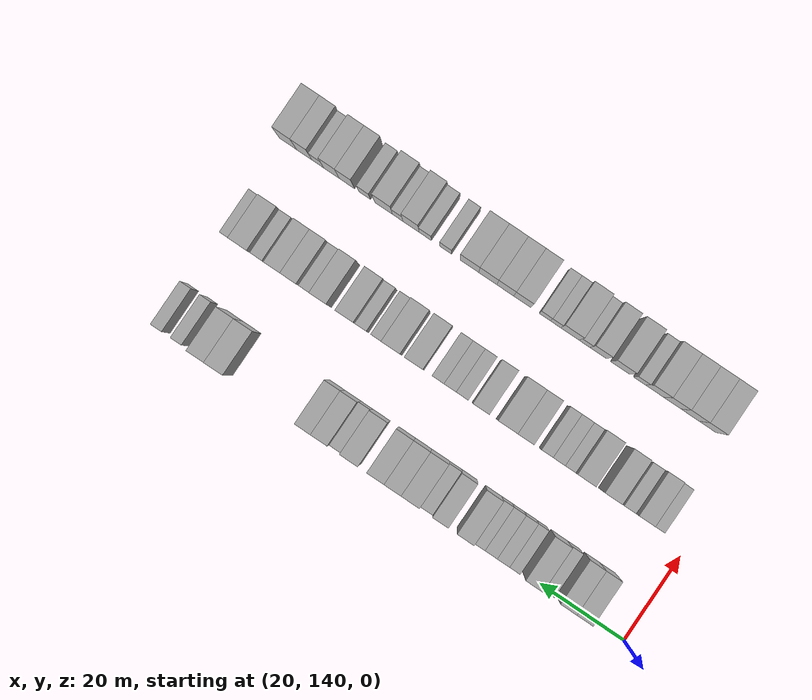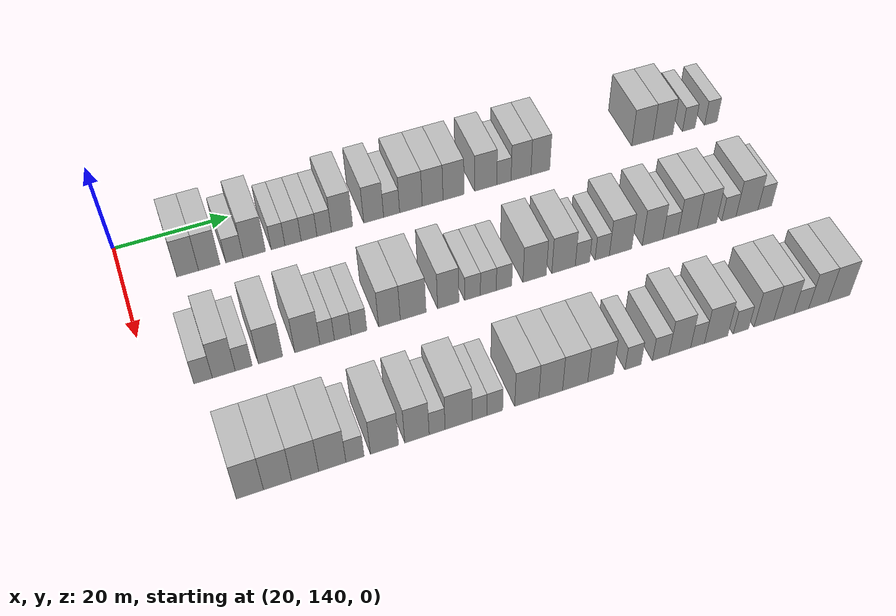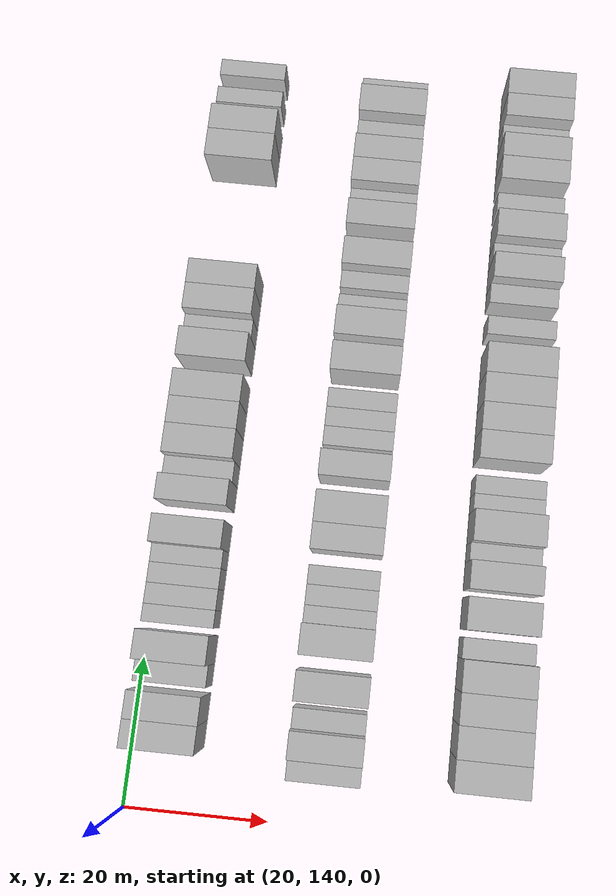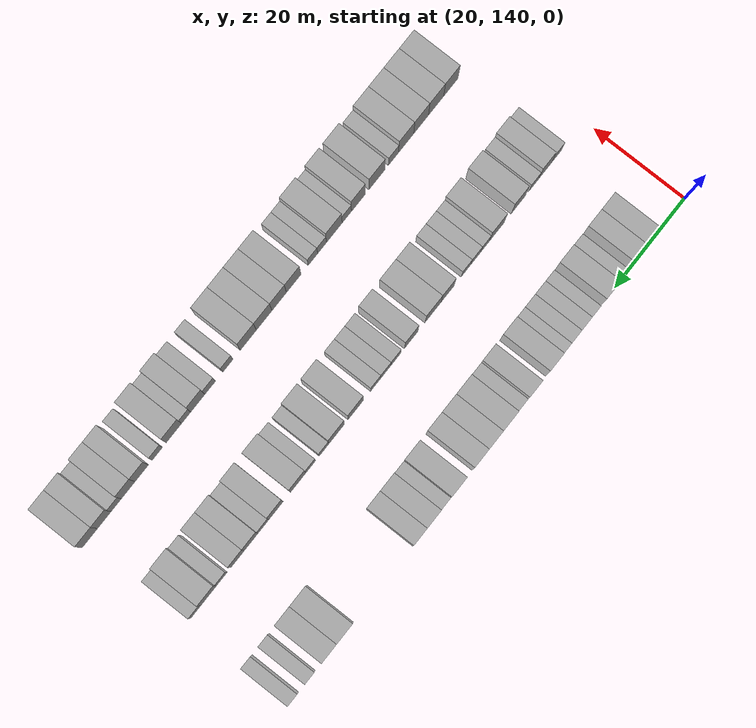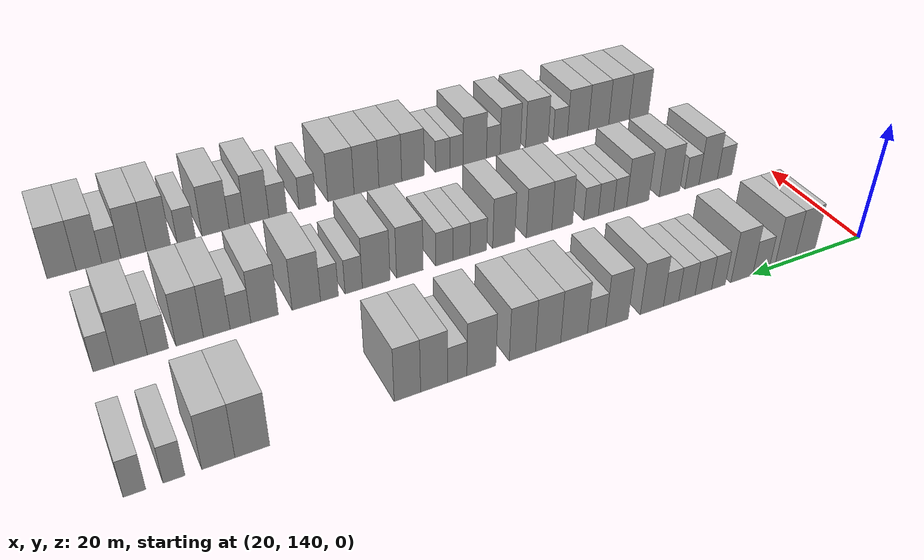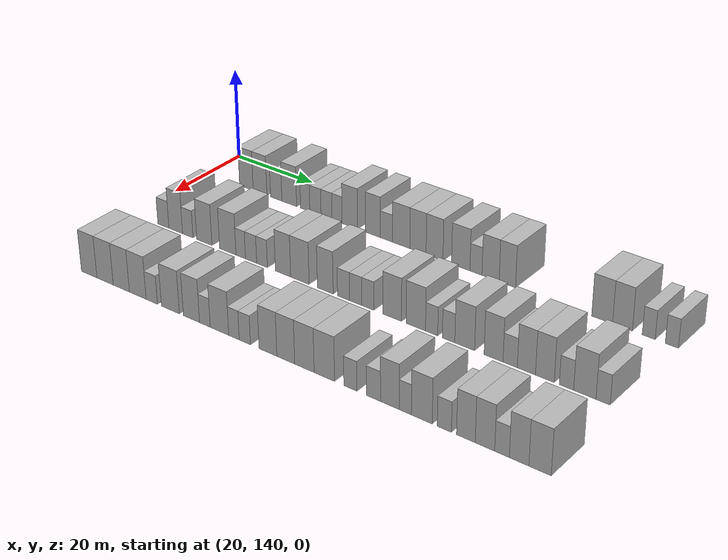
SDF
<sdf version="1.6">
 <world name="default">
  <model name="building_99">
   <static>1</static>
   <pose>25.0000 150.6242 0 0.000000 0.000000 0.000000</pose>
   <link name="link">
    <pose>0 0 4.50 0 0 0</pose>
    <collision name="collision"><geometry><box><size>10.0000 3.6966 9.0000</size></box></geometry></collision>
    <visual name="visual">
     <cast_shadows>0</cast_shadows>
     <geometry><box><size>10.0000 3.6966 9.0000</size></box></geometry>
     <material>
      <script>
       <uri>model://HANNAS_wall/materials/scripts</uri>
       <uri>model://HANNAS_wall/materials/textures</uri>
       <name>vrc/HANNAS_wall</name>
      </script>
     </material>
    </visual>
   </link>
  </model>
  <model name="building_100">
   <static>1</static>
   <pose>25.0000 154.3163 0 0.000000 0.000000 0.000000</pose>
   <link name="link">
    <pose>0 0 4.50 0 0 0</pose>
    <collision name="collision"><geometry><box><size>10.0000 3.6876 9.0000</size></box></geometry></collision>
    <visual name="visual">
     <cast_shadows>0</cast_shadows>
     <geometry><box><size>10.0000 3.6876 9.0000</size></box></geometry>
     <material>
      <script>
       <uri>model://HANNAS_wall/materials/scripts</uri>
       <uri>model://HANNAS_wall/materials/textures</uri>
       <name>vrc/HANNAS_wall</name>
      </script>
     </material>
    </visual>
   </link>
  </model>
  <model name="building_101">
   <static>1</static>
   <pose>25.0000 158.6533 0 0.000000 0.000000 0.000000</pose>
   <link name="link">
    <pose>0 0 3.00 0 0 0</pose>
    <collision name="collision"><geometry><box><size>10.0000 2.9864 6.0000</size></box></geometry></collision>
    <visual name="visual">
     <cast_shadows>0</cast_shadows>
     <geometry><box><size>10.0000 2.9864 6.0000</size></box></geometry>
     <material>
      <script>
       <uri>model://HANNAS_wall/materials/scripts</uri>
       <uri>model://HANNAS_wall/materials/textures</uri>
       <name>vrc/HANNAS_wall</name>
      </script>
     </material>
    </visual>
   </link>
  </model>
  <model name="building_102">
   <static>1</static>
   <pose>25.0000 162.1022 0 0.000000 0.000000 0.000000</pose>
   <link name="link">
    <pose>0 0 4.50 0 0 0</pose>
    <collision name="collision"><geometry><box><size>10.0000 3.9112 9.0000</size></box></geometry></collision>
    <visual name="visual">
     <cast_shadows>0</cast_shadows>
     <geometry><box><size>10.0000 3.9112 9.0000</size></box></geometry>
     <material>
      <script>
       <uri>model://HANNAS_wall/materials/scripts</uri>
       <uri>model://HANNAS_wall/materials/textures</uri>
       <name>vrc/HANNAS_wall</name>
      </script>
     </material>
    </visual>
   </link>
  </model>
  <model name="building_103">
   <static>1</static>
   <pose>25.0000 166.2684 0 0.000000 0.000000 0.000000</pose>
   <link name="link">
    <pose>0 0 3.00 0 0 0</pose>
    <collision name="collision"><geometry><box><size>10.0000 2.4212 6.0000</size></box></geometry></collision>
    <visual name="visual">
     <cast_shadows>0</cast_shadows>
     <geometry><box><size>10.0000 2.4212 6.0000</size></box></geometry>
     <material>
      <script>
       <uri>model://HANNAS_wall/materials/scripts</uri>
       <uri>model://HANNAS_wall/materials/textures</uri>
       <name>vrc/HANNAS_wall</name>
      </script>
     </material>
    </visual>
   </link>
  </model>
  <model name="building_104">
   <static>1</static>
   <pose>25.0000 168.9135 0 0.000000 0.000000 0.000000</pose>
   <link name="link">
    <pose>0 0 3.00 0 0 0</pose>
    <collision name="collision"><geometry><box><size>10.0000 2.8690 6.0000</size></box></geometry></collision>
    <visual name="visual">
     <cast_shadows>0</cast_shadows>
     <geometry><box><size>10.0000 2.8690 6.0000</size></box></geometry>
     <material>
      <script>
       <uri>model://HANNAS_wall/materials/scripts</uri>
       <uri>model://HANNAS_wall/materials/textures</uri>
       <name>vrc/HANNAS_wall</name>
      </script>
     </material>
    </visual>
   </link>
  </model>
  <model name="building_105">
   <static>1</static>
   <pose>25.0000 171.7547 0 0.000000 0.000000 0.000000</pose>
   <link name="link">
    <pose>0 0 3.00 0 0 0</pose>
    <collision name="collision"><geometry><box><size>10.0000 2.8135 6.0000</size></box></geometry></collision>
    <visual name="visual">
     <cast_shadows>0</cast_shadows>
     <geometry><box><size>10.0000 2.8135 6.0000</size></box></geometry>
     <material>
      <script>
       <uri>model://HANNAS_wall/materials/scripts</uri>
       <uri>model://HANNAS_wall/materials/textures</uri>
       <name>vrc/HANNAS_wall</name>
      </script>
     </material>
    </visual>
   </link>
  </model>
  <model name="building_106">
   <static>1</static>
   <pose>25.0000 174.4472 0 0.000000 0.000000 0.000000</pose>
   <link name="link">
    <pose>0 0 3.00 0 0 0</pose>
    <collision name="collision"><geometry><box><size>10.0000 2.5715 6.0000</size></box></geometry></collision>
    <visual name="visual">
     <cast_shadows>0</cast_shadows>
     <geometry><box><size>10.0000 2.5715 6.0000</size></box></geometry>
     <material>
      <script>
       <uri>model://HANNAS_wall/materials/scripts</uri>
       <uri>model://HANNAS_wall/materials/textures</uri>
       <name>vrc/HANNAS_wall</name>
      </script>
     </material>
    </visual>
   </link>
  </model>
  <model name="building_107">
   <static>1</static>
   <pose>25.0000 177.6582 0 0.000000 0.000000 0.000000</pose>
   <link name="link">
    <pose>0 0 4.50 0 0 0</pose>
    <collision name="collision"><geometry><box><size>10.0000 3.8504 9.0000</size></box></geometry></collision>
    <visual name="visual">
     <cast_shadows>0</cast_shadows>
     <geometry><box><size>10.0000 3.8504 9.0000</size></box></geometry>
     <material>
      <script>
       <uri>model://HANNAS_wall/materials/scripts</uri>
       <uri>model://HANNAS_wall/materials/textures</uri>
       <name>vrc/HANNAS_wall</name>
      </script>
     </material>
    </visual>
   </link>
  </model>
  <model name="building_108">
   <static>1</static>
   <pose>25.0000 183.3969 0 0.000000 0.000000 0.000000</pose>
   <link name="link">
    <pose>0 0 4.50 0 0 0</pose>
    <collision name="collision"><geometry><box><size>10.0000 3.6270 9.0000</size></box></geometry></collision>
    <visual name="visual">
     <cast_shadows>0</cast_shadows>
     <geometry><box><size>10.0000 3.6270 9.0000</size></box></geometry>
     <material>
      <script>
       <uri>model://HANNAS_wall/materials/scripts</uri>
       <uri>model://HANNAS_wall/materials/textures</uri>
       <name>vrc/HANNAS_wall</name>
      </script>
     </material>
    </visual>
   </link>
  </model>
  <model name="building_109">
   <static>1</static>
   <pose>25.0000 186.6775 0 0.000000 0.000000 0.000000</pose>
   <link name="link">
    <pose>0 0 3.00 0 0 0</pose>
    <collision name="collision"><geometry><box><size>10.0000 2.9343 6.0000</size></box></geometry></collision>
    <visual name="visual">
     <cast_shadows>0</cast_shadows>
     <geometry><box><size>10.0000 2.9343 6.0000</size></box></geometry>
     <material>
      <script>
       <uri>model://HANNAS_wall/materials/scripts</uri>
       <uri>model://HANNAS_wall/materials/textures</uri>
       <name>vrc/HANNAS_wall</name>
      </script>
     </material>
    </visual>
   </link>
  </model>
  <model name="building_110">
   <static>1</static>
   <pose>25.0000 190.2429 0 0.000000 0.000000 0.000000</pose>
   <link name="link">
    <pose>0 0 4.50 0 0 0</pose>
    <collision name="collision"><geometry><box><size>10.0000 4.1966 9.0000</size></box></geometry></collision>
    <visual name="visual">
     <cast_shadows>0</cast_shadows>
     <geometry><box><size>10.0000 4.1966 9.0000</size></box></geometry>
     <material>
      <script>
       <uri>model://HANNAS_wall/materials/scripts</uri>
       <uri>model://HANNAS_wall/materials/textures</uri>
       <name>vrc/HANNAS_wall</name>
      </script>
     </material>
    </visual>
   </link>
  </model>
  <model name="building_111">
   <static>1</static>
   <pose>25.0000 194.2755 0 0.000000 0.000000 0.000000</pose>
   <link name="link">
    <pose>0 0 4.50 0 0 0</pose>
    <collision name="collision"><geometry><box><size>10.0000 3.8686 9.0000</size></box></geometry></collision>
    <visual name="visual">
     <cast_shadows>0</cast_shadows>
     <geometry><box><size>10.0000 3.8686 9.0000</size></box></geometry>
     <material>
      <script>
       <uri>model://HANNAS_wall/materials/scripts</uri>
       <uri>model://HANNAS_wall/materials/textures</uri>
       <name>vrc/HANNAS_wall</name>
      </script>
     </material>
    </visual>
   </link>
  </model>
  <model name="building_112">
   <static>1</static>
   <pose>25.0000 198.1874 0 0.000000 0.000000 0.000000</pose>
   <link name="link">
    <pose>0 0 4.50 0 0 0</pose>
    <collision name="collision"><geometry><box><size>10.0000 3.9551 9.0000</size></box></geometry></collision>
    <visual name="visual">
     <cast_shadows>0</cast_shadows>
     <geometry><box><size>10.0000 3.9551 9.0000</size></box></geometry>
     <material>
      <script>
       <uri>model://HANNAS_wall/materials/scripts</uri>
       <uri>model://HANNAS_wall/materials/textures</uri>
       <name>vrc/HANNAS_wall</name>
      </script>
     </material>
    </visual>
   </link>
  </model>
  <model name="building_113">
   <static>1</static>
   <pose>25.0000 204.2715 0 0.000000 0.000000 0.000000</pose>
   <link name="link">
    <pose>0 0 4.50 0 0 0</pose>
    <collision name="collision"><geometry><box><size>10.0000 4.2132 9.0000</size></box></geometry></collision>
    <visual name="visual">
     <cast_shadows>0</cast_shadows>
     <geometry><box><size>10.0000 4.2132 9.0000</size></box></geometry>
     <material>
      <script>
       <uri>model://HANNAS_wall/materials/scripts</uri>
       <uri>model://HANNAS_wall/materials/textures</uri>
       <name>vrc/HANNAS_wall</name>
      </script>
     </material>
    </visual>
   </link>
  </model>
  <model name="building_114">
   <static>1</static>
   <pose>25.0000 207.7498 0 0.000000 0.000000 0.000000</pose>
   <link name="link">
    <pose>0 0 3.00 0 0 0</pose>
    <collision name="collision"><geometry><box><size>10.0000 2.7434 6.0000</size></box></geometry></collision>
    <visual name="visual">
     <cast_shadows>0</cast_shadows>
     <geometry><box><size>10.0000 2.7434 6.0000</size></box></geometry>
     <material>
      <script>
       <uri>model://HANNAS_wall/materials/scripts</uri>
       <uri>model://HANNAS_wall/materials/textures</uri>
       <name>vrc/HANNAS_wall</name>
      </script>
     </material>
    </visual>
   </link>
  </model>
  <model name="building_115">
   <static>1</static>
   <pose>25.0000 211.0407 0 0.000000 0.000000 0.000000</pose>
   <link name="link">
    <pose>0 0 4.50 0 0 0</pose>
    <collision name="collision"><geometry><box><size>10.0000 3.8383 9.0000</size></box></geometry></collision>
    <visual name="visual">
     <cast_shadows>0</cast_shadows>
     <geometry><box><size>10.0000 3.8383 9.0000</size></box></geometry>
     <material>
      <script>
       <uri>model://HANNAS_wall/materials/scripts</uri>
       <uri>model://HANNAS_wall/materials/textures</uri>
       <name>vrc/HANNAS_wall</name>
      </script>
     </material>
    </visual>
   </link>
  </model>
  <model name="building_116">
   <static>1</static>
   <pose>25.0000 214.7878 0 0.000000 0.000000 0.000000</pose>
   <link name="link">
    <pose>0 0 4.50 0 0 0</pose>
    <collision name="collision"><geometry><box><size>10.0000 3.6560 9.0000</size></box></geometry></collision>
    <visual name="visual">
     <cast_shadows>0</cast_shadows>
     <geometry><box><size>10.0000 3.6560 9.0000</size></box></geometry>
     <material>
      <script>
       <uri>model://HANNAS_wall/materials/scripts</uri>
       <uri>model://HANNAS_wall/materials/textures</uri>
       <name>vrc/HANNAS_wall</name>
      </script>
     </material>
    </visual>
   </link>
  </model>
  <model name="building_117">
   <static>1</static>
   <pose>25.0000 235.0868 0 0.000000 0.000000 0.000000</pose>
   <link name="link">
    <pose>0 0 4.50 0 0 0</pose>
    <collision name="collision"><geometry><box><size>10.0000 4.3140 9.0000</size></box></geometry></collision>
    <visual name="visual">
     <cast_shadows>0</cast_shadows>
     <geometry><box><size>10.0000 4.3140 9.0000</size></box></geometry>
     <material>
      <script>
       <uri>model://HANNAS_wall/materials/scripts</uri>
       <uri>model://HANNAS_wall/materials/textures</uri>
       <name>vrc/HANNAS_wall</name>
      </script>
     </material>
    </visual>
   </link>
  </model>
  <model name="building_118">
   <static>1</static>
   <pose>25.0000 239.2544 0 0.000000 0.000000 0.000000</pose>
   <link name="link">
    <pose>0 0 4.50 0 0 0</pose>
    <collision name="collision"><geometry><box><size>10.0000 4.0212 9.0000</size></box></geometry></collision>
    <visual name="visual">
     <cast_shadows>0</cast_shadows>
     <geometry><box><size>10.0000 4.0212 9.0000</size></box></geometry>
     <material>
      <script>
       <uri>model://HANNAS_wall/materials/scripts</uri>
       <uri>model://HANNAS_wall/materials/textures</uri>
       <name>vrc/HANNAS_wall</name>
      </script>
     </material>
    </visual>
   </link>
  </model>
  <model name="building_119">
   <static>1</static>
   <pose>25.0000 244.5554 0 0.000000 0.000000 0.000000</pose>
   <link name="link">
    <pose>0 0 3.00 0 0 0</pose>
    <collision name="collision"><geometry><box><size>10.0000 2.5808 6.0000</size></box></geometry></collision>
    <visual name="visual">
     <cast_shadows>0</cast_shadows>
     <geometry><box><size>10.0000 2.5808 6.0000</size></box></geometry>
     <material>
      <script>
       <uri>model://HANNAS_wall/materials/scripts</uri>
       <uri>model://HANNAS_wall/materials/textures</uri>
       <name>vrc/HANNAS_wall</name>
      </script>
     </material>
    </visual>
   </link>
  </model>
  <model name="building_120">
   <static>1</static>
   <pose>25.0000 249.1459 0 0.000000 0.000000 0.000000</pose>
   <link name="link">
    <pose>0 0 3.00 0 0 0</pose>
    <collision name="collision"><geometry><box><size>10.0000 2.6002 6.0000</size></box></geometry></collision>
    <visual name="visual">
     <cast_shadows>0</cast_shadows>
     <geometry><box><size>10.0000 2.6002 6.0000</size></box></geometry>
     <material>
      <script>
       <uri>model://HANNAS_wall/materials/scripts</uri>
       <uri>model://HANNAS_wall/materials/textures</uri>
       <name>vrc/HANNAS_wall</name>
      </script>
     </material>
    </visual>
   </link>
  </model>
  <model name="building_222">
   <static>1</static>
   <pose>47.0000 148.0273 0 0.000000 0.000000 0.000000</pose>
   <link name="link">
    <pose>0 0 3.00 0 0 0</pose>
    <collision name="collision"><geometry><box><size>10.0000 2.9588 6.0000</size></box></geometry></collision>
    <visual name="visual">
     <cast_shadows>0</cast_shadows>
     <geometry><box><size>10.0000 2.9588 6.0000</size></box></geometry>
     <material>
      <script>
       <uri>model://HANNAS_wall/materials/scripts</uri>
       <uri>model://HANNAS_wall/materials/textures</uri>
       <name>vrc/HANNAS_wall</name>
      </script>
     </material>
    </visual>
   </link>
  </model>
  <model name="building_223">
   <static>1</static>
   <pose>47.0000 151.3450 0 0.000000 0.000000 0.000000</pose>
   <link name="link">
    <pose>0 0 4.50 0 0 0</pose>
    <collision name="collision"><geometry><box><size>10.0000 3.6767 9.0000</size></box></geometry></collision>
    <visual name="visual">
     <cast_shadows>0</cast_shadows>
     <geometry><box><size>10.0000 3.6767 9.0000</size></box></geometry>
     <material>
      <script>
       <uri>model://HANNAS_wall/materials/scripts</uri>
       <uri>model://HANNAS_wall/materials/textures</uri>
       <name>vrc/HANNAS_wall</name>
      </script>
     </material>
    </visual>
   </link>
  </model>
  <model name="building_224">
   <static>1</static>
   <pose>47.0000 154.5580 0 0.000000 0.000000 0.000000</pose>
   <link name="link">
    <pose>0 0 3.00 0 0 0</pose>
    <collision name="collision"><geometry><box><size>10.0000 2.7492 6.0000</size></box></geometry></collision>
    <visual name="visual">
     <cast_shadows>0</cast_shadows>
     <geometry><box><size>10.0000 2.7492 6.0000</size></box></geometry>
     <material>
      <script>
       <uri>model://HANNAS_wall/materials/scripts</uri>
       <uri>model://HANNAS_wall/materials/textures</uri>
       <name>vrc/HANNAS_wall</name>
      </script>
     </material>
    </visual>
   </link>
  </model>
  <model name="building_225">
   <static>1</static>
   <pose>47.0000 158.9249 0 0.000000 0.000000 0.000000</pose>
   <link name="link">
    <pose>0 0 4.50 0 0 0</pose>
    <collision name="collision"><geometry><box><size>10.0000 3.9846 9.0000</size></box></geometry></collision>
    <visual name="visual">
     <cast_shadows>0</cast_shadows>
     <geometry><box><size>10.0000 3.9846 9.0000</size></box></geometry>
     <material>
      <script>
       <uri>model://HANNAS_wall/materials/scripts</uri>
       <uri>model://HANNAS_wall/materials/textures</uri>
       <name>vrc/HANNAS_wall</name>
      </script>
     </material>
    </visual>
   </link>
  </model>
  <model name="building_226">
   <static>1</static>
   <pose>47.0000 165.0074 0 0.000000 0.000000 0.000000</pose>
   <link name="link">
    <pose>0 0 4.50 0 0 0</pose>
    <collision name="collision"><geometry><box><size>10.0000 4.1804 9.0000</size></box></geometry></collision>
    <visual name="visual">
     <cast_shadows>0</cast_shadows>
     <geometry><box><size>10.0000 4.1804 9.0000</size></box></geometry>
     <material>
      <script>
       <uri>model://HANNAS_wall/materials/scripts</uri>
       <uri>model://HANNAS_wall/materials/textures</uri>
       <name>vrc/HANNAS_wall</name>
      </script>
     </material>
    </visual>
   </link>
  </model>
  <model name="building_227">
   <static>1</static>
   <pose>47.0000 168.3029 0 0.000000 0.000000 0.000000</pose>
   <link name="link">
    <pose>0 0 3.00 0 0 0</pose>
    <collision name="collision"><geometry><box><size>10.0000 2.4106 6.0000</size></box></geometry></collision>
    <visual name="visual">
     <cast_shadows>0</cast_shadows>
     <geometry><box><size>10.0000 2.4106 6.0000</size></box></geometry>
     <material>
      <script>
       <uri>model://HANNAS_wall/materials/scripts</uri>
       <uri>model://HANNAS_wall/materials/textures</uri>
       <name>vrc/HANNAS_wall</name>
      </script>
     </material>
    </visual>
   </link>
  </model>
  <model name="building_228">
   <static>1</static>
   <pose>47.0000 170.9163 0 0.000000 0.000000 0.000000</pose>
   <link name="link">
    <pose>0 0 3.00 0 0 0</pose>
    <collision name="collision"><geometry><box><size>10.0000 2.8163 6.0000</size></box></geometry></collision>
    <visual name="visual">
     <cast_shadows>0</cast_shadows>
     <geometry><box><size>10.0000 2.8163 6.0000</size></box></geometry>
     <material>
      <script>
       <uri>model://HANNAS_wall/materials/scripts</uri>
       <uri>model://HANNAS_wall/materials/textures</uri>
       <name>vrc/HANNAS_wall</name>
      </script>
     </material>
    </visual>
   </link>
  </model>
  <model name="building_229">
   <static>1</static>
   <pose>47.0000 173.6542 0 0.000000 0.000000 0.000000</pose>
   <link name="link">
    <pose>0 0 3.00 0 0 0</pose>
    <collision name="collision"><geometry><box><size>10.0000 2.6595 6.0000</size></box></geometry></collision>
    <visual name="visual">
     <cast_shadows>0</cast_shadows>
     <geometry><box><size>10.0000 2.6595 6.0000</size></box></geometry>
     <material>
      <script>
       <uri>model://HANNAS_wall/materials/scripts</uri>
       <uri>model://HANNAS_wall/materials/textures</uri>
       <name>vrc/HANNAS_wall</name>
      </script>
     </material>
    </visual>
   </link>
  </model>
  <model name="building_230">
   <static>1</static>
   <pose>47.0000 178.8391 0 0.000000 0.000000 0.000000</pose>
   <link name="link">
    <pose>0 0 4.50 0 0 0</pose>
    <collision name="collision"><geometry><box><size>10.0000 3.7104 9.0000</size></box></geometry></collision>
    <visual name="visual">
     <cast_shadows>0</cast_shadows>
     <geometry><box><size>10.0000 3.7104 9.0000</size></box></geometry>
     <material>
      <script>
       <uri>model://HANNAS_wall/materials/scripts</uri>
       <uri>model://HANNAS_wall/materials/textures</uri>
       <name>vrc/HANNAS_wall</name>
      </script>
     </material>
    </visual>
   </link>
  </model>
  <model name="building_231">
   <static>1</static>
   <pose>47.0000 182.9224 0 0.000000 0.000000 0.000000</pose>
   <link name="link">
    <pose>0 0 4.50 0 0 0</pose>
    <collision name="collision"><geometry><box><size>10.0000 4.4563 9.0000</size></box></geometry></collision>
    <visual name="visual">
     <cast_shadows>0</cast_shadows>
     <geometry><box><size>10.0000 4.4563 9.0000</size></box></geometry>
     <material>
      <script>
       <uri>model://HANNAS_wall/materials/scripts</uri>
       <uri>model://HANNAS_wall/materials/textures</uri>
       <name>vrc/HANNAS_wall</name>
      </script>
     </material>
    </visual>
   </link>
  </model>
  <model name="building_232">
   <static>1</static>
   <pose>47.0000 189.0180 0 0.000000 0.000000 0.000000</pose>
   <link name="link">
    <pose>0 0 4.50 0 0 0</pose>
    <collision name="collision"><geometry><box><size>10.0000 3.7347 9.0000</size></box></geometry></collision>
    <visual name="visual">
     <cast_shadows>0</cast_shadows>
     <geometry><box><size>10.0000 3.7347 9.0000</size></box></geometry>
     <material>
      <script>
       <uri>model://HANNAS_wall/materials/scripts</uri>
       <uri>model://HANNAS_wall/materials/textures</uri>
       <name>vrc/HANNAS_wall</name>
      </script>
     </material>
    </visual>
   </link>
  </model>
  <model name="building_233">
   <static>1</static>
   <pose>47.0000 193.2829 0 0.000000 0.000000 0.000000</pose>
   <link name="link">
    <pose>0 0 3.00 0 0 0</pose>
    <collision name="collision"><geometry><box><size>10.0000 2.7951 6.0000</size></box></geometry></collision>
    <visual name="visual">
     <cast_shadows>0</cast_shadows>
     <geometry><box><size>10.0000 2.7951 6.0000</size></box></geometry>
     <material>
      <script>
       <uri>model://HANNAS_wall/materials/scripts</uri>
       <uri>model://HANNAS_wall/materials/textures</uri>
       <name>vrc/HANNAS_wall</name>
      </script>
     </material>
    </visual>
   </link>
  </model>
  <model name="building_234">
   <static>1</static>
   <pose>47.0000 196.0892 0 0.000000 0.000000 0.000000</pose>
   <link name="link">
    <pose>0 0 3.00 0 0 0</pose>
    <collision name="collision"><geometry><box><size>10.0000 2.8176 6.0000</size></box></geometry></collision>
    <visual name="visual">
     <cast_shadows>0</cast_shadows>
     <geometry><box><size>10.0000 2.8176 6.0000</size></box></geometry>
     <material>
      <script>
       <uri>model://HANNAS_wall/materials/scripts</uri>
       <uri>model://HANNAS_wall/materials/textures</uri>
       <name>vrc/HANNAS_wall</name>
      </script>
     </material>
    </visual>
   </link>
  </model>
  <model name="building_235">
   <static>1</static>
   <pose>47.0000 198.8898 0 0.000000 0.000000 0.000000</pose>
   <link name="link">
    <pose>0 0 3.00 0 0 0</pose>
    <collision name="collision"><geometry><box><size>10.0000 2.7836 6.0000</size></box></geometry></collision>
    <visual name="visual">
     <cast_shadows>0</cast_shadows>
     <geometry><box><size>10.0000 2.7836 6.0000</size></box></geometry>
     <material>
      <script>
       <uri>model://HANNAS_wall/materials/scripts</uri>
       <uri>model://HANNAS_wall/materials/textures</uri>
       <name>vrc/HANNAS_wall</name>
      </script>
     </material>
    </visual>
   </link>
  </model>
  <model name="building_236">
   <static>1</static>
   <pose>47.0000 204.3978 0 0.000000 0.000000 0.000000</pose>
   <link name="link">
    <pose>0 0 4.50 0 0 0</pose>
    <collision name="collision"><geometry><box><size>10.0000 4.2324 9.0000</size></box></geometry></collision>
    <visual name="visual">
     <cast_shadows>0</cast_shadows>
     <geometry><box><size>10.0000 4.2324 9.0000</size></box></geometry>
     <material>
      <script>
       <uri>model://HANNAS_wall/materials/scripts</uri>
       <uri>model://HANNAS_wall/materials/textures</uri>
       <name>vrc/HANNAS_wall</name>
      </script>
     </material>
    </visual>
   </link>
  </model>
  <model name="building_237">
   <static>1</static>
   <pose>47.0000 209.6605 0 0.000000 0.000000 0.000000</pose>
   <link name="link">
    <pose>0 0 4.50 0 0 0</pose>
    <collision name="collision"><geometry><box><size>10.0000 4.2931 9.0000</size></box></geometry></collision>
    <visual name="visual">
     <cast_shadows>0</cast_shadows>
     <geometry><box><size>10.0000 4.2931 9.0000</size></box></geometry>
     <material>
      <script>
       <uri>model://HANNAS_wall/materials/scripts</uri>
       <uri>model://HANNAS_wall/materials/textures</uri>
       <name>vrc/HANNAS_wall</name>
      </script>
     </material>
    </visual>
   </link>
  </model>
  <model name="building_238">
   <static>1</static>
   <pose>47.0000 213.1320 0 0.000000 0.000000 0.000000</pose>
   <link name="link">
    <pose>0 0 3.00 0 0 0</pose>
    <collision name="collision"><geometry><box><size>10.0000 2.6498 6.0000</size></box></geometry></collision>
    <visual name="visual">
     <cast_shadows>0</cast_shadows>
     <geometry><box><size>10.0000 2.6498 6.0000</size></box></geometry>
     <material>
      <script>
       <uri>model://HANNAS_wall/materials/scripts</uri>
       <uri>model://HANNAS_wall/materials/textures</uri>
       <name>vrc/HANNAS_wall</name>
      </script>
     </material>
    </visual>
   </link>
  </model>
  <model name="building_239">
   <static>1</static>
   <pose>47.0000 216.7945 0 0.000000 0.000000 0.000000</pose>
   <link name="link">
    <pose>0 0 3.00 0 0 0</pose>
    <collision name="collision"><geometry><box><size>10.0000 2.6752 6.0000</size></box></geometry></collision>
    <visual name="visual">
     <cast_shadows>0</cast_shadows>
     <geometry><box><size>10.0000 2.6752 6.0000</size></box></geometry>
     <material>
      <script>
       <uri>model://HANNAS_wall/materials/scripts</uri>
       <uri>model://HANNAS_wall/materials/textures</uri>
       <name>vrc/HANNAS_wall</name>
      </script>
     </material>
    </visual>
   </link>
  </model>
  <model name="building_240">
   <static>1</static>
   <pose>47.0000 220.2245 0 0.000000 0.000000 0.000000</pose>
   <link name="link">
    <pose>0 0 4.50 0 0 0</pose>
    <collision name="collision"><geometry><box><size>10.0000 4.1850 9.0000</size></box></geometry></collision>
    <visual name="visual">
     <cast_shadows>0</cast_shadows>
     <geometry><box><size>10.0000 4.1850 9.0000</size></box></geometry>
     <material>
      <script>
       <uri>model://HANNAS_wall/materials/scripts</uri>
       <uri>model://HANNAS_wall/materials/textures</uri>
       <name>vrc/HANNAS_wall</name>
      </script>
     </material>
    </visual>
   </link>
  </model>
  <model name="building_241">
   <static>1</static>
   <pose>47.0000 226.2790 0 0.000000 0.000000 0.000000</pose>
   <link name="link">
    <pose>0 0 4.50 0 0 0</pose>
    <collision name="collision"><geometry><box><size>10.0000 3.9241 9.0000</size></box></geometry></collision>
    <visual name="visual">
     <cast_shadows>0</cast_shadows>
     <geometry><box><size>10.0000 3.9241 9.0000</size></box></geometry>
     <material>
      <script>
       <uri>model://HANNAS_wall/materials/scripts</uri>
       <uri>model://HANNAS_wall/materials/textures</uri>
       <name>vrc/HANNAS_wall</name>
      </script>
     </material>
    </visual>
   </link>
  </model>
  <model name="building_242">
   <static>1</static>
   <pose>47.0000 229.7009 0 0.000000 0.000000 0.000000</pose>
   <link name="link">
    <pose>0 0 3.00 0 0 0</pose>
    <collision name="collision"><geometry><box><size>10.0000 2.9197 6.0000</size></box></geometry></collision>
    <visual name="visual">
     <cast_shadows>0</cast_shadows>
     <geometry><box><size>10.0000 2.9197 6.0000</size></box></geometry>
     <material>
      <script>
       <uri>model://HANNAS_wall/materials/scripts</uri>
       <uri>model://HANNAS_wall/materials/textures</uri>
       <name>vrc/HANNAS_wall</name>
      </script>
     </material>
    </visual>
   </link>
  </model>
  <model name="building_243">
   <static>1</static>
   <pose>47.0000 233.0033 0 0.000000 0.000000 0.000000</pose>
   <link name="link">
    <pose>0 0 4.50 0 0 0</pose>
    <collision name="collision"><geometry><box><size>10.0000 3.6852 9.0000</size></box></geometry></collision>
    <visual name="visual">
     <cast_shadows>0</cast_shadows>
     <geometry><box><size>10.0000 3.6852 9.0000</size></box></geometry>
     <material>
      <script>
       <uri>model://HANNAS_wall/materials/scripts</uri>
       <uri>model://HANNAS_wall/materials/textures</uri>
       <name>vrc/HANNAS_wall</name>
      </script>
     </material>
    </visual>
   </link>
  </model>
  <model name="building_244">
   <static>1</static>
   <pose>47.0000 236.7193 0 0.000000 0.000000 0.000000</pose>
   <link name="link">
    <pose>0 0 4.50 0 0 0</pose>
    <collision name="collision"><geometry><box><size>10.0000 3.7467 9.0000</size></box></geometry></collision>
    <visual name="visual">
     <cast_shadows>0</cast_shadows>
     <geometry><box><size>10.0000 3.7467 9.0000</size></box></geometry>
     <material>
      <script>
       <uri>model://HANNAS_wall/materials/scripts</uri>
       <uri>model://HANNAS_wall/materials/textures</uri>
       <name>vrc/HANNAS_wall</name>
      </script>
     </material>
    </visual>
   </link>
  </model>
  <model name="building_245">
   <static>1</static>
   <pose>47.0000 240.9996 0 0.000000 0.000000 0.000000</pose>
   <link name="link">
    <pose>0 0 3.00 0 0 0</pose>
    <collision name="collision"><geometry><box><size>10.0000 2.8137 6.0000</size></box></geometry></collision>
    <visual name="visual">
     <cast_shadows>0</cast_shadows>
     <geometry><box><size>10.0000 2.8137 6.0000</size></box></geometry>
     <material>
      <script>
       <uri>model://HANNAS_wall/materials/scripts</uri>
       <uri>model://HANNAS_wall/materials/textures</uri>
       <name>vrc/HANNAS_wall</name>
      </script>
     </material>
    </visual>
   </link>
  </model>
  <model name="building_246">
   <static>1</static>
   <pose>47.0000 244.5716 0 0.000000 0.000000 0.000000</pose>
   <link name="link">
    <pose>0 0 4.50 0 0 0</pose>
    <collision name="collision"><geometry><box><size>10.0000 4.3304 9.0000</size></box></geometry></collision>
    <visual name="visual">
     <cast_shadows>0</cast_shadows>
     <geometry><box><size>10.0000 4.3304 9.0000</size></box></geometry>
     <material>
      <script>
       <uri>model://HANNAS_wall/materials/scripts</uri>
       <uri>model://HANNAS_wall/materials/textures</uri>
       <name>vrc/HANNAS_wall</name>
      </script>
     </material>
    </visual>
   </link>
  </model>
  <model name="building_247">
   <static>1</static>
   <pose>47.0000 248.0972 0 0.000000 0.000000 0.000000</pose>
   <link name="link">
    <pose>0 0 3.00 0 0 0</pose>
    <collision name="collision"><geometry><box><size>10.0000 2.7208 6.0000</size></box></geometry></collision>
    <visual name="visual">
     <cast_shadows>0</cast_shadows>
     <geometry><box><size>10.0000 2.7208 6.0000</size></box></geometry>
     <material>
      <script>
       <uri>model://HANNAS_wall/materials/scripts</uri>
       <uri>model://HANNAS_wall/materials/textures</uri>
       <name>vrc/HANNAS_wall</name>
      </script>
     </material>
    </visual>
   </link>
  </model>
  <model name="building_345">
   <static>1</static>
   <pose>69.0000 149.7829 0 0.000000 0.000000 0.000000</pose>
   <link name="link">
    <pose>0 0 4.50 0 0 0</pose>
    <collision name="collision"><geometry><box><size>10.0000 4.1043 9.0000</size></box></geometry></collision>
    <visual name="visual">
     <cast_shadows>0</cast_shadows>
     <geometry><box><size>10.0000 4.1043 9.0000</size></box></geometry>
     <material>
      <script>
       <uri>model://HANNAS_wall/materials/scripts</uri>
       <uri>model://HANNAS_wall/materials/textures</uri>
       <name>vrc/HANNAS_wall</name>
      </script>
     </material>
    </visual>
   </link>
  </model>
  <model name="building_346">
   <static>1</static>
   <pose>69.0000 153.9704 0 0.000000 0.000000 0.000000</pose>
   <link name="link">
    <pose>0 0 4.50 0 0 0</pose>
    <collision name="collision"><geometry><box><size>10.0000 4.2706 9.0000</size></box></geometry></collision>
    <visual name="visual">
     <cast_shadows>0</cast_shadows>
     <geometry><box><size>10.0000 4.2706 9.0000</size></box></geometry>
     <material>
      <script>
       <uri>model://HANNAS_wall/materials/scripts</uri>
       <uri>model://HANNAS_wall/materials/textures</uri>
       <name>vrc/HANNAS_wall</name>
      </script>
     </material>
    </visual>
   </link>
  </model>
  <model name="building_347">
   <static>1</static>
   <pose>69.0000 158.1948 0 0.000000 0.000000 0.000000</pose>
   <link name="link">
    <pose>0 0 4.50 0 0 0</pose>
    <collision name="collision"><geometry><box><size>10.0000 4.1783 9.0000</size></box></geometry></collision>
    <visual name="visual">
     <cast_shadows>0</cast_shadows>
     <geometry><box><size>10.0000 4.1783 9.0000</size></box></geometry>
     <material>
      <script>
       <uri>model://HANNAS_wall/materials/scripts</uri>
       <uri>model://HANNAS_wall/materials/textures</uri>
       <name>vrc/HANNAS_wall</name>
      </script>
     </material>
    </visual>
   </link>
  </model>
  <model name="building_348">
   <static>1</static>
   <pose>69.0000 162.4102 0 0.000000 0.000000 0.000000</pose>
   <link name="link">
    <pose>0 0 4.50 0 0 0</pose>
    <collision name="collision"><geometry><box><size>10.0000 4.2525 9.0000</size></box></geometry></collision>
    <visual name="visual">
     <cast_shadows>0</cast_shadows>
     <geometry><box><size>10.0000 4.2525 9.0000</size></box></geometry>
     <material>
      <script>
       <uri>model://HANNAS_wall/materials/scripts</uri>
       <uri>model://HANNAS_wall/materials/textures</uri>
       <name>vrc/HANNAS_wall</name>
      </script>
     </material>
    </visual>
   </link>
  </model>
  <model name="building_349">
   <static>1</static>
   <pose>69.0000 165.9587 0 0.000000 0.000000 0.000000</pose>
   <link name="link">
    <pose>0 0 3.00 0 0 0</pose>
    <collision name="collision"><geometry><box><size>10.0000 2.8446 6.0000</size></box></geometry></collision>
    <visual name="visual">
     <cast_shadows>0</cast_shadows>
     <geometry><box><size>10.0000 2.8446 6.0000</size></box></geometry>
     <material>
      <script>
       <uri>model://HANNAS_wall/materials/scripts</uri>
       <uri>model://HANNAS_wall/materials/textures</uri>
       <name>vrc/HANNAS_wall</name>
      </script>
     </material>
    </visual>
   </link>
  </model>
  <model name="building_350">
   <static>1</static>
   <pose>69.0000 170.6060 0 0.000000 0.000000 0.000000</pose>
   <link name="link">
    <pose>0 0 4.50 0 0 0</pose>
    <collision name="collision"><geometry><box><size>10.0000 4.4499 9.0000</size></box></geometry></collision>
    <visual name="visual">
     <cast_shadows>0</cast_shadows>
     <geometry><box><size>10.0000 4.4499 9.0000</size></box></geometry>
     <material>
      <script>
       <uri>model://HANNAS_wall/materials/scripts</uri>
       <uri>model://HANNAS_wall/materials/textures</uri>
       <name>vrc/HANNAS_wall</name>
      </script>
     </material>
    </visual>
   </link>
  </model>
  <model name="building_351">
   <static>1</static>
   <pose>69.0000 175.7872 0 0.000000 0.000000 0.000000</pose>
   <link name="link">
    <pose>0 0 4.50 0 0 0</pose>
    <collision name="collision"><geometry><box><size>10.0000 3.9125 9.0000</size></box></geometry></collision>
    <visual name="visual">
     <cast_shadows>0</cast_shadows>
     <geometry><box><size>10.0000 3.9125 9.0000</size></box></geometry>
     <material>
      <script>
       <uri>model://HANNAS_wall/materials/scripts</uri>
       <uri>model://HANNAS_wall/materials/textures</uri>
       <name>vrc/HANNAS_wall</name>
      </script>
     </material>
    </visual>
   </link>
  </model>
  <model name="building_352">
   <static>1</static>
   <pose>69.0000 179.0317 0 0.000000 0.000000 0.000000</pose>
   <link name="link">
    <pose>0 0 3.00 0 0 0</pose>
    <collision name="collision"><geometry><box><size>10.0000 2.5766 6.0000</size></box></geometry></collision>
    <visual name="visual">
     <cast_shadows>0</cast_shadows>
     <geometry><box><size>10.0000 2.5766 6.0000</size></box></geometry>
     <material>
      <script>
       <uri>model://HANNAS_wall/materials/scripts</uri>
       <uri>model://HANNAS_wall/materials/textures</uri>
       <name>vrc/HANNAS_wall</name>
      </script>
     </material>
    </visual>
   </link>
  </model>
  <model name="building_353">
   <static>1</static>
   <pose>69.0000 182.5095 0 0.000000 0.000000 0.000000</pose>
   <link name="link">
    <pose>0 0 4.50 0 0 0</pose>
    <collision name="collision"><geometry><box><size>10.0000 4.3790 9.0000</size></box></geometry></collision>
    <visual name="visual">
     <cast_shadows>0</cast_shadows>
     <geometry><box><size>10.0000 4.3790 9.0000</size></box></geometry>
     <material>
      <script>
       <uri>model://HANNAS_wall/materials/scripts</uri>
       <uri>model://HANNAS_wall/materials/textures</uri>
       <name>vrc/HANNAS_wall</name>
      </script>
     </material>
    </visual>
   </link>
  </model>
  <model name="building_354">
   <static>1</static>
   <pose>69.0000 185.9314 0 0.000000 0.000000 0.000000</pose>
   <link name="link">
    <pose>0 0 3.00 0 0 0</pose>
    <collision name="collision"><geometry><box><size>10.0000 2.4647 6.0000</size></box></geometry></collision>
    <visual name="visual">
     <cast_shadows>0</cast_shadows>
     <geometry><box><size>10.0000 2.4647 6.0000</size></box></geometry>
     <material>
      <script>
       <uri>model://HANNAS_wall/materials/scripts</uri>
       <uri>model://HANNAS_wall/materials/textures</uri>
       <name>vrc/HANNAS_wall</name>
      </script>
     </material>
    </visual>
   </link>
  </model>
  <model name="building_355">
   <static>1</static>
   <pose>69.0000 188.4719 0 0.000000 0.000000 0.000000</pose>
   <link name="link">
    <pose>0 0 3.00 0 0 0</pose>
    <collision name="collision"><geometry><box><size>10.0000 2.6163 6.0000</size></box></geometry></collision>
    <visual name="visual">
     <cast_shadows>0</cast_shadows>
     <geometry><box><size>10.0000 2.6163 6.0000</size></box></geometry>
     <material>
      <script>
       <uri>model://HANNAS_wall/materials/scripts</uri>
       <uri>model://HANNAS_wall/materials/textures</uri>
       <name>vrc/HANNAS_wall</name>
      </script>
     </material>
    </visual>
   </link>
  </model>
  <model name="building_356">
   <static>1</static>
   <pose>69.0000 193.8027 0 0.000000 0.000000 0.000000</pose>
   <link name="link">
    <pose>0 0 4.50 0 0 0</pose>
    <collision name="collision"><geometry><box><size>10.0000 4.0453 9.0000</size></box></geometry></collision>
    <visual name="visual">
     <cast_shadows>0</cast_shadows>
     <geometry><box><size>10.0000 4.0453 9.0000</size></box></geometry>
     <material>
      <script>
       <uri>model://HANNAS_wall/materials/scripts</uri>
       <uri>model://HANNAS_wall/materials/textures</uri>
       <name>vrc/HANNAS_wall</name>
      </script>
     </material>
    </visual>
   </link>
  </model>
  <model name="building_357">
   <static>1</static>
   <pose>69.0000 197.8301 0 0.000000 0.000000 0.000000</pose>
   <link name="link">
    <pose>0 0 4.50 0 0 0</pose>
    <collision name="collision"><geometry><box><size>10.0000 4.0094 9.0000</size></box></geometry></collision>
    <visual name="visual">
     <cast_shadows>0</cast_shadows>
     <geometry><box><size>10.0000 4.0094 9.0000</size></box></geometry>
     <material>
      <script>
       <uri>model://HANNAS_wall/materials/scripts</uri>
       <uri>model://HANNAS_wall/materials/textures</uri>
       <name>vrc/HANNAS_wall</name>
      </script>
     </material>
    </visual>
   </link>
  </model>
  <model name="building_358">
   <static>1</static>
   <pose>69.0000 201.9842 0 0.000000 0.000000 0.000000</pose>
   <link name="link">
    <pose>0 0 4.50 0 0 0</pose>
    <collision name="collision"><geometry><box><size>10.0000 4.2989 9.0000</size></box></geometry></collision>
    <visual name="visual">
     <cast_shadows>0</cast_shadows>
     <geometry><box><size>10.0000 4.2989 9.0000</size></box></geometry>
     <material>
      <script>
       <uri>model://HANNAS_wall/materials/scripts</uri>
       <uri>model://HANNAS_wall/materials/textures</uri>
       <name>vrc/HANNAS_wall</name>
      </script>
     </material>
    </visual>
   </link>
  </model>
  <model name="building_359">
   <static>1</static>
   <pose>69.0000 206.3556 0 0.000000 0.000000 0.000000</pose>
   <link name="link">
    <pose>0 0 4.50 0 0 0</pose>
    <collision name="collision"><geometry><box><size>10.0000 4.4439 9.0000</size></box></geometry></collision>
    <visual name="visual">
     <cast_shadows>0</cast_shadows>
     <geometry><box><size>10.0000 4.4439 9.0000</size></box></geometry>
     <material>
      <script>
       <uri>model://HANNAS_wall/materials/scripts</uri>
       <uri>model://HANNAS_wall/materials/textures</uri>
       <name>vrc/HANNAS_wall</name>
      </script>
     </material>
    </visual>
   </link>
  </model>
  <model name="building_360">
   <static>1</static>
   <pose>69.0000 211.9805 0 0.000000 0.000000 0.000000</pose>
   <link name="link">
    <pose>0 0 3.00 0 0 0</pose>
    <collision name="collision"><geometry><box><size>10.0000 2.8059 6.0000</size></box></geometry></collision>
    <visual name="visual">
     <cast_shadows>0</cast_shadows>
     <geometry><box><size>10.0000 2.8059 6.0000</size></box></geometry>
     <material>
      <script>
       <uri>model://HANNAS_wall/materials/scripts</uri>
       <uri>model://HANNAS_wall/materials/textures</uri>
       <name>vrc/HANNAS_wall</name>
      </script>
     </material>
    </visual>
   </link>
  </model>
  <model name="building_361">
   <static>1</static>
   <pose>69.0000 216.8522 0 0.000000 0.000000 0.000000</pose>
   <link name="link">
    <pose>0 0 3.00 0 0 0</pose>
    <collision name="collision"><geometry><box><size>10.0000 2.9376 6.0000</size></box></geometry></collision>
    <visual name="visual">
     <cast_shadows>0</cast_shadows>
     <geometry><box><size>10.0000 2.9376 6.0000</size></box></geometry>
     <material>
      <script>
       <uri>model://HANNAS_wall/materials/scripts</uri>
       <uri>model://HANNAS_wall/materials/textures</uri>
       <name>vrc/HANNAS_wall</name>
      </script>
     </material>
    </visual>
   </link>
  </model>
  <model name="building_362">
   <static>1</static>
   <pose>69.0000 220.2467 0 0.000000 0.000000 0.000000</pose>
   <link name="link">
    <pose>0 0 4.50 0 0 0</pose>
    <collision name="collision"><geometry><box><size>10.0000 3.8515 9.0000</size></box></geometry></collision>
    <visual name="visual">
     <cast_shadows>0</cast_shadows>
     <geometry><box><size>10.0000 3.8515 9.0000</size></box></geometry>
     <material>
      <script>
       <uri>model://HANNAS_wall/materials/scripts</uri>
       <uri>model://HANNAS_wall/materials/textures</uri>
       <name>vrc/HANNAS_wall</name>
      </script>
     </material>
    </visual>
   </link>
  </model>
  <model name="building_363">
   <static>1</static>
   <pose>69.0000 223.4150 0 0.000000 0.000000 0.000000</pose>
   <link name="link">
    <pose>0 0 3.00 0 0 0</pose>
    <collision name="collision"><geometry><box><size>10.0000 2.4851 6.0000</size></box></geometry></collision>
    <visual name="visual">
     <cast_shadows>0</cast_shadows>
     <geometry><box><size>10.0000 2.4851 6.0000</size></box></geometry>
     <material>
      <script>
       <uri>model://HANNAS_wall/materials/scripts</uri>
       <uri>model://HANNAS_wall/materials/textures</uri>
       <name>vrc/HANNAS_wall</name>
      </script>
     </material>
    </visual>
   </link>
  </model>
  <model name="building_364">
   <static>1</static>
   <pose>69.0000 226.7664 0 0.000000 0.000000 0.000000</pose>
   <link name="link">
    <pose>0 0 4.50 0 0 0</pose>
    <collision name="collision"><geometry><box><size>10.0000 4.2176 9.0000</size></box></geometry></collision>
    <visual name="visual">
     <cast_shadows>0</cast_shadows>
     <geometry><box><size>10.0000 4.2176 9.0000</size></box></geometry>
     <material>
      <script>
       <uri>model://HANNAS_wall/materials/scripts</uri>
       <uri>model://HANNAS_wall/materials/textures</uri>
       <name>vrc/HANNAS_wall</name>
      </script>
     </material>
    </visual>
   </link>
  </model>
  <model name="building_365">
   <static>1</static>
   <pose>69.0000 231.2791 0 0.000000 0.000000 0.000000</pose>
   <link name="link">
    <pose>0 0 3.00 0 0 0</pose>
    <collision name="collision"><geometry><box><size>10.0000 2.8078 6.0000</size></box></geometry></collision>
    <visual name="visual">
     <cast_shadows>0</cast_shadows>
     <geometry><box><size>10.0000 2.8078 6.0000</size></box></geometry>
     <material>
      <script>
       <uri>model://HANNAS_wall/materials/scripts</uri>
       <uri>model://HANNAS_wall/materials/textures</uri>
       <name>vrc/HANNAS_wall</name>
      </script>
     </material>
    </visual>
   </link>
  </model>
  <model name="building_366">
   <static>1</static>
   <pose>69.0000 235.5066 0 0.000000 0.000000 0.000000</pose>
   <link name="link">
    <pose>0 0 4.50 0 0 0</pose>
    <collision name="collision"><geometry><box><size>10.0000 3.6473 9.0000</size></box></geometry></collision>
    <visual name="visual">
     <cast_shadows>0</cast_shadows>
     <geometry><box><size>10.0000 3.6473 9.0000</size></box></geometry>
     <material>
      <script>
       <uri>model://HANNAS_wall/materials/scripts</uri>
       <uri>model://HANNAS_wall/materials/textures</uri>
       <name>vrc/HANNAS_wall</name>
      </script>
     </material>
    </visual>
   </link>
  </model>
  <model name="building_367">
   <static>1</static>
   <pose>69.0000 239.1974 0 0.000000 0.000000 0.000000</pose>
   <link name="link">
    <pose>0 0 4.50 0 0 0</pose>
    <collision name="collision"><geometry><box><size>10.0000 3.7342 9.0000</size></box></geometry></collision>
    <visual name="visual">
     <cast_shadows>0</cast_shadows>
     <geometry><box><size>10.0000 3.7342 9.0000</size></box></geometry>
     <material>
      <script>
       <uri>model://HANNAS_wall/materials/scripts</uri>
       <uri>model://HANNAS_wall/materials/textures</uri>
       <name>vrc/HANNAS_wall</name>
      </script>
     </material>
    </visual>
   </link>
  </model>
  <model name="building_368">
   <static>1</static>
   <pose>69.0000 242.4499 0 0.000000 0.000000 0.000000</pose>
   <link name="link">
    <pose>0 0 3.00 0 0 0</pose>
    <collision name="collision"><geometry><box><size>10.0000 2.7709 6.0000</size></box></geometry></collision>
    <visual name="visual">
     <cast_shadows>0</cast_shadows>
     <geometry><box><size>10.0000 2.7709 6.0000</size></box></geometry>
     <material>
      <script>
       <uri>model://HANNAS_wall/materials/scripts</uri>
       <uri>model://HANNAS_wall/materials/textures</uri>
       <name>vrc/HANNAS_wall</name>
      </script>
     </material>
    </visual>
   </link>
  </model>
  <model name="building_369">
   <static>1</static>
   <pose>69.0000 245.6652 0 0.000000 0.000000 0.000000</pose>
   <link name="link">
    <pose>0 0 4.50 0 0 0</pose>
    <collision name="collision"><geometry><box><size>10.0000 3.6597 9.0000</size></box></geometry></collision>
    <visual name="visual">
     <cast_shadows>0</cast_shadows>
     <geometry><box><size>10.0000 3.6597 9.0000</size></box></geometry>
     <material>
      <script>
       <uri>model://HANNAS_wall/materials/scripts</uri>
       <uri>model://HANNAS_wall/materials/textures</uri>
       <name>vrc/HANNAS_wall</name>
      </script>
     </material>
    </visual>
   </link>
  </model>
  <model name="building_370">
   <static>1</static>
   <pose>69.0000 249.5581 0 0.000000 0.000000 0.000000</pose>
   <link name="link">
    <pose>0 0 4.50 0 0 0</pose>
    <collision name="collision"><geometry><box><size>10.0000 4.1260 9.0000</size></box></geometry></collision>
    <visual name="visual">
     <cast_shadows>0</cast_shadows>
     <geometry><box><size>10.0000 4.1260 9.0000</size></box></geometry>
     <material>
      <script>
       <uri>model://HANNAS_wall/materials/scripts</uri>
       <uri>model://HANNAS_wall/materials/textures</uri>
       <name>vrc/HANNAS_wall</name>
      </script>
     </material>
    </visual>
   </link>
  </model>
 </world>
</sdf>
